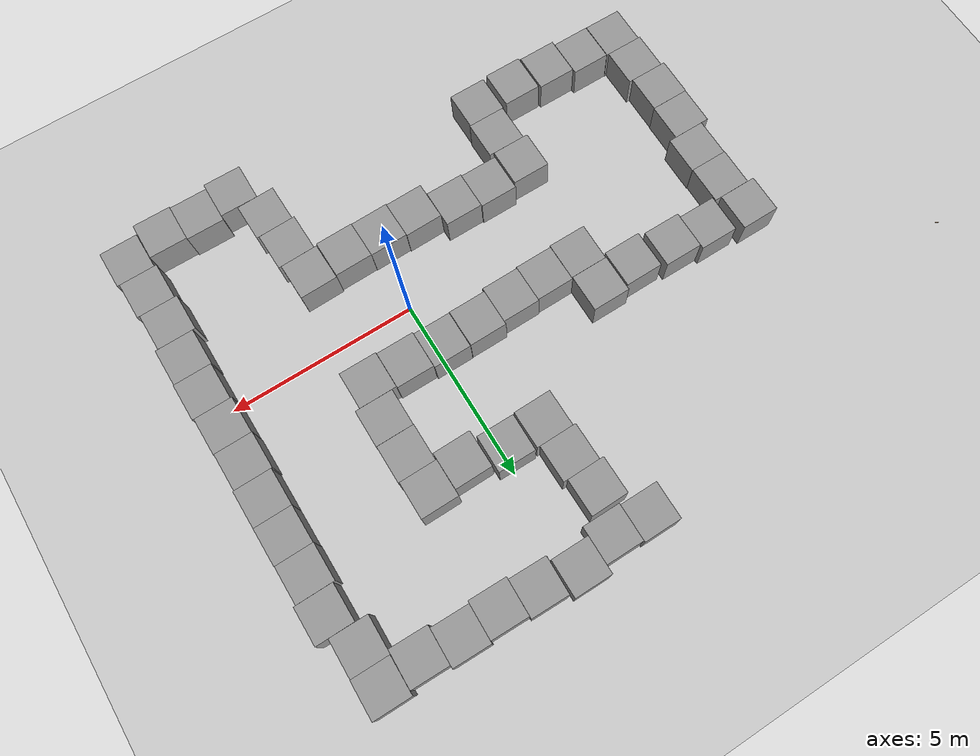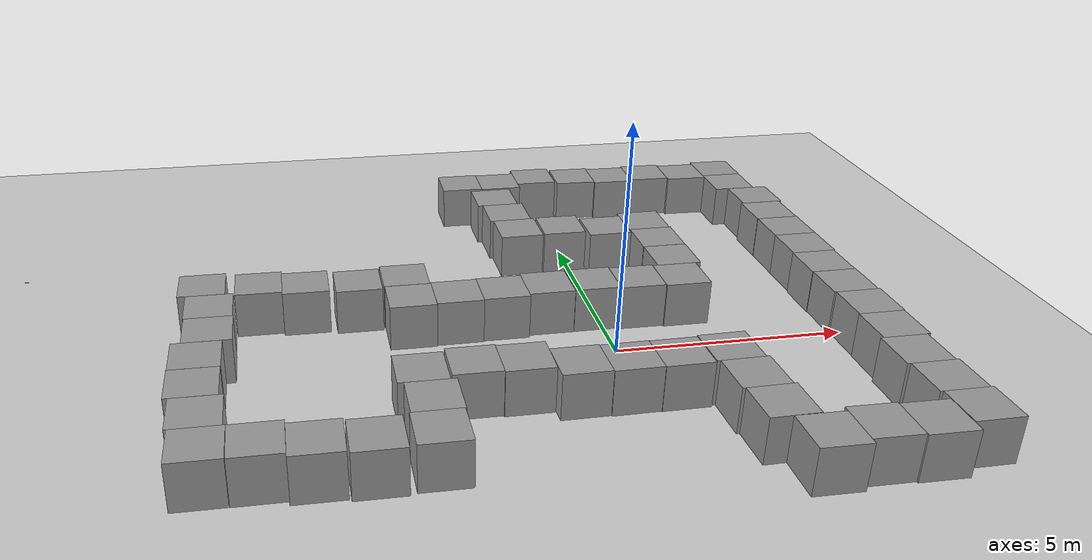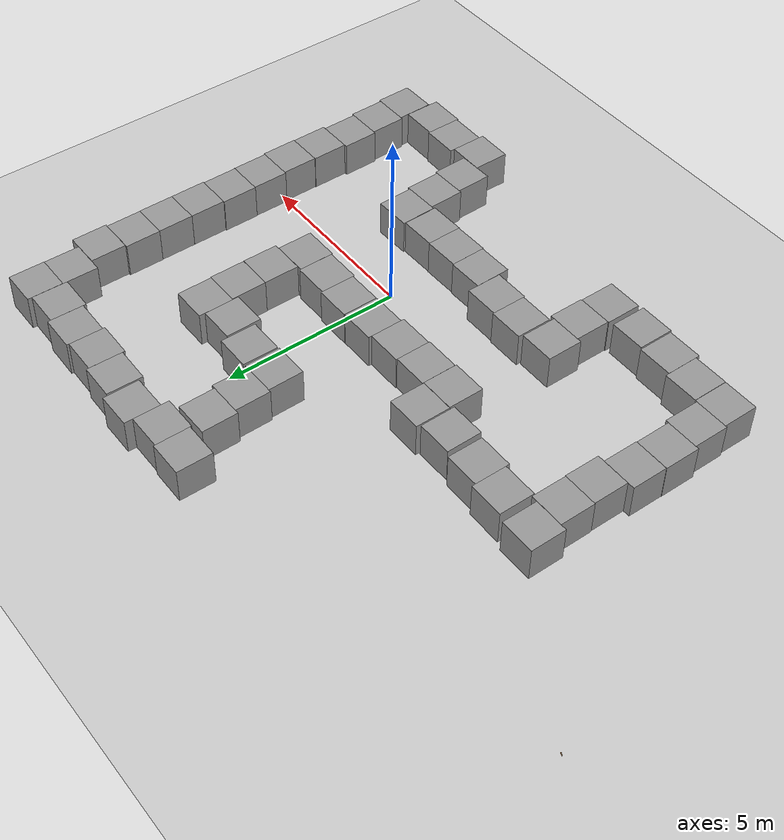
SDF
<sdf version="1.7">
 <world name="default">
  <light name="sun" type="directional">
   <pose>0 0 10 0 -0 0</pose>
   <diffuse>0.8 0.8 0.8 1</diffuse>
   <specular>0.2 0.2 0.2 1</specular>
   <attenuation>
    <range>1000</range>
    <constant>0.9</constant>
    <linear>0.01</linear>
    <quadratic>0.001</quadratic>
   </attenuation>
   <direction>-0.5 0.1 -0.9</direction>
   <spot><inner_angle>0</inner_angle><outer_angle>0</outer_angle><falloff>0</falloff></spot>
  </light>
  <model name="ground_plane">
   <static>1</static>
   <link name="link">
    <collision name="collision">
     <geometry><plane><normal>0 0 1</normal><size>100 100</size></plane></geometry>
     <surface>
      <contact><collide_bitmask>65535</collide_bitmask></contact>
      <friction><ode><mu>100</mu><mu2>50</mu2></ode></friction>
     </surface>
    </collision>
    <visual name="visual">
     <cast_shadows>0</cast_shadows>
     <geometry><plane><normal>0 0 1</normal><size>100 100</size></plane></geometry>
     <material>
      <script><uri>file://media/materials/scripts/gazebo.material</uri><name>Gazebo/Grey</name></script>
     </material>
    </visual>
   </link>
  </model>
  <gravity>0 0 -9.8</gravity>
  <magnetic_field>6e-06 2.3e-05 -4.2e-05</magnetic_field>
  <atmosphere type="adiabatic"/>
  <physics type="ode">
   <max_step_size>0.001</max_step_size>
   <real_time_factor>1</real_time_factor>
   <real_time_update_rate>1000</real_time_update_rate>
  </physics>
  <scene><ambient>0.4 0.4 0.4 1</ambient><background>0.7 0.7 0.7 1</background><shadows>1</shadows></scene>
  <spherical_coordinates>
   <surface_model>EARTH_WGS84</surface_model>
   <latitude_deg>0</latitude_deg>
   <longitude_deg>0</longitude_deg>
   <elevation>0</elevation>
   <heading_deg>0</heading_deg>
  </spherical_coordinates>
  <model name="unit_box_clone">
   <pose>-0.164448 1.46231 0.499995 -1e-05 -0 0.003311</pose>
   <link name="link">
    <inertial>
     <mass>1</mass>
     <inertia>
      <ixx>0.166667</ixx>
      <ixy>0</ixy>
      <ixz>0</ixz>
      <iyy>0.166667</iyy>
      <iyz>0</iyz>
      <izz>0.166667</izz>
     </inertia>
    </inertial>
    <collision name="collision"><geometry><box><size>1 1 1</size></box></geometry></collision>
    <visual name="visual">
     <geometry><box><size>1 1 1</size></box></geometry>
     <material>
      <script><name>Gazebo/Grey</name><uri>file://media/materials/scripts/gazebo.material</uri></script>
     </material>
    </visual>
   </link>
  </model>
  <model name="unit_box_clone_0">
   <pose>0.836914 1.41912 0.5 0 -0 0.000743</pose>
   <link name="link">
    <inertial>
     <mass>1</mass>
     <inertia>
      <ixx>0.166667</ixx>
      <ixy>0</ixy>
      <ixz>0</ixz>
      <iyy>0.166667</iyy>
      <iyz>0</iyz>
      <izz>0.166667</izz>
     </inertia>
    </inertial>
    <collision name="collision"><geometry><box><size>1 1 1</size></box></geometry></collision>
    <visual name="visual">
     <geometry><box><size>1 1 1</size></box></geometry>
     <material>
      <script><name>Gazebo/Grey</name><uri>file://media/materials/scripts/gazebo.material</uri></script>
     </material>
    </visual>
   </link>
  </model>
  <model name="unit_box_clone_1">
   <pose>1.83889 1.38351 0.499995 0 1e-05 0.000138</pose>
   <link name="link">
    <inertial>
     <mass>1</mass>
     <inertia>
      <ixx>0.166667</ixx>
      <ixy>0</ixy>
      <ixz>0</ixz>
      <iyy>0.166667</iyy>
      <iyz>0</iyz>
      <izz>0.166667</izz>
     </inertia>
    </inertial>
    <collision name="collision"><geometry><box><size>1 1 1</size></box></geometry></collision>
    <visual name="visual">
     <geometry><box><size>1 1 1</size></box></geometry>
     <material>
      <script><name>Gazebo/Grey</name><uri>file://media/materials/scripts/gazebo.material</uri></script>
     </material>
    </visual>
   </link>
  </model>
  <model name="unit_box_clone_4">
   <pose>1.70034 -1.80405 0.499995 0 -1e-05 0.024342</pose>
   <link name="link">
    <inertial>
     <mass>1</mass>
     <inertia>
      <ixx>0.166667</ixx>
      <ixy>0</ixy>
      <ixz>0</ixz>
      <iyy>0.166667</iyy>
      <iyz>0</iyz>
      <izz>0.166667</izz>
     </inertia>
    </inertial>
    <collision name="collision"><geometry><box><size>1 1 1</size></box></geometry></collision>
    <visual name="visual">
     <geometry><box><size>1 1 1</size></box></geometry>
     <material>
      <script><name>Gazebo/Grey</name><uri>file://media/materials/scripts/gazebo.material</uri></script>
     </material>
    </visual>
   </link>
  </model>
  <model name="unit_box_clone_6">
   <pose>1.923 4.38822 0.499995 -1e-05 0 0.004295</pose>
   <link name="link">
    <inertial>
     <mass>1</mass>
     <inertia>
      <ixx>0.166667</ixx>
      <ixy>0</ixy>
      <ixz>0</ixz>
      <iyy>0.166667</iyy>
      <iyz>0</iyz>
      <izz>0.166667</izz>
     </inertia>
    </inertial>
    <collision name="collision"><geometry><box><size>1 1 1</size></box></geometry></collision>
    <visual name="visual">
     <geometry><box><size>1 1 1</size></box></geometry>
     <material>
      <script><name>Gazebo/Grey</name><uri>file://media/materials/scripts/gazebo.material</uri></script>
     </material>
    </visual>
   </link>
  </model>
  <model name="unit_box_clone_7">
   <pose>1.95193 3.38825 0.499995 1e-05 -0 0.00419</pose>
   <link name="link">
    <inertial>
     <mass>1</mass>
     <inertia>
      <ixx>0.166667</ixx>
      <ixy>0</ixy>
      <ixz>0</ixz>
      <iyy>0.166667</iyy>
      <iyz>0</iyz>
      <izz>0.166667</izz>
     </inertia>
    </inertial>
    <collision name="collision"><geometry><box><size>1 1 1</size></box></geometry></collision>
    <visual name="visual">
     <geometry><box><size>1 1 1</size></box></geometry>
     <material>
      <script><name>Gazebo/Grey</name><uri>file://media/materials/scripts/gazebo.material</uri></script>
     </material>
    </visual>
   </link>
  </model>
  <model name="unit_box_clone_8">
   <pose>1.96253 2.38588 0.499995 -0 -1e-05 5.1e-05</pose>
   <link name="link">
    <inertial>
     <mass>1</mass>
     <inertia>
      <ixx>0.166667</ixx>
      <ixy>0</ixy>
      <ixz>0</ixz>
      <iyy>0.166667</iyy>
      <iyz>0</iyz>
      <izz>0.166667</izz>
     </inertia>
    </inertial>
    <collision name="collision"><geometry><box><size>1 1 1</size></box></geometry></collision>
    <visual name="visual">
     <geometry><box><size>1 1 1</size></box></geometry>
     <material>
      <script><name>Gazebo/Grey</name><uri>file://media/materials/scripts/gazebo.material</uri></script>
     </material>
    </visual>
   </link>
  </model>
  <model name="unit_box_clone_2">
   <pose>5.22257 4.52446 0.5 0 -0 0.005913</pose>
   <link name="link">
    <inertial>
     <mass>1</mass>
     <inertia>
      <ixx>0.166667</ixx>
      <ixy>0</ixy>
      <ixz>0</ixz>
      <iyy>0.166667</iyy>
      <iyz>0</iyz>
      <izz>0.166667</izz>
     </inertia>
    </inertial>
    <collision name="collision"><geometry><box><size>1 1 1</size></box></geometry></collision>
    <visual name="visual">
     <geometry><box><size>1 1 1</size></box></geometry>
     <material>
      <script><name>Gazebo/Grey</name><uri>file://media/materials/scripts/gazebo.material</uri></script>
     </material>
    </visual>
   </link>
  </model>
  <model name="unit_box_clone_9">
   <pose>5.23699 3.52421 0.5 0 -0 0.006543</pose>
   <link name="link">
    <inertial>
     <mass>1</mass>
     <inertia>
      <ixx>0.166667</ixx>
      <ixy>0</ixy>
      <ixz>0</ixz>
      <iyy>0.166667</iyy>
      <iyz>0</iyz>
      <izz>0.166667</izz>
     </inertia>
    </inertial>
    <collision name="collision"><geometry><box><size>1 1 1</size></box></geometry></collision>
    <visual name="visual">
     <geometry><box><size>1 1 1</size></box></geometry>
     <material>
      <script><name>Gazebo/Grey</name><uri>file://media/materials/scripts/gazebo.material</uri></script>
     </material>
    </visual>
   </link>
  </model>
  <model name="unit_box_clone_10">
   <pose>5.24223 2.5241 0.499995 0 -1e-05 0.006777</pose>
   <link name="link">
    <inertial>
     <mass>1</mass>
     <inertia>
      <ixx>0.166667</ixx>
      <ixy>0</ixy>
      <ixz>0</ixz>
      <iyy>0.166667</iyy>
      <iyz>0</iyz>
      <izz>0.166667</izz>
     </inertia>
    </inertial>
    <collision name="collision"><geometry><box><size>1 1 1</size></box></geometry></collision>
    <visual name="visual">
     <geometry><box><size>1 1 1</size></box></geometry>
     <material>
      <script><name>Gazebo/Grey</name><uri>file://media/materials/scripts/gazebo.material</uri></script>
     </material>
    </visual>
   </link>
  </model>
  <model name="unit_box_clone_11">
   <pose>5.22201 1.52394 0.499995 0 1e-05 0.006778</pose>
   <link name="link">
    <inertial>
     <mass>1</mass>
     <inertia>
      <ixx>0.166667</ixx>
      <ixy>0</ixy>
      <ixz>0</ixz>
      <iyy>0.166667</iyy>
      <iyz>0</iyz>
      <izz>0.166667</izz>
     </inertia>
    </inertial>
    <collision name="collision"><geometry><box><size>1 1 1</size></box></geometry></collision>
    <visual name="visual">
     <geometry><box><size>1 1 1</size></box></geometry>
     <material>
      <script><name>Gazebo/Grey</name><uri>file://media/materials/scripts/gazebo.material</uri></script>
     </material>
    </visual>
   </link>
  </model>
  <model name="unit_box_clone_12">
   <pose>5.24227 0.523939 0.5 0 -0 0.007004</pose>
   <link name="link">
    <inertial>
     <mass>1</mass>
     <inertia>
      <ixx>0.166667</ixx>
      <ixy>0</ixy>
      <ixz>0</ixz>
      <iyy>0.166667</iyy>
      <iyz>0</iyz>
      <izz>0.166667</izz>
     </inertia>
    </inertial>
    <collision name="collision"><geometry><box><size>1 1 1</size></box></geometry></collision>
    <visual name="visual">
     <geometry><box><size>1 1 1</size></box></geometry>
     <material>
      <script><name>Gazebo/Grey</name><uri>file://media/materials/scripts/gazebo.material</uri></script>
     </material>
    </visual>
   </link>
  </model>
  <model name="unit_box_clone_13">
   <pose>5.28859 -0.475823 0.5 0 -0 0.007122</pose>
   <link name="link">
    <inertial>
     <mass>1</mass>
     <inertia>
      <ixx>0.166667</ixx>
      <ixy>0</ixy>
      <ixz>0</ixz>
      <iyy>0.166667</iyy>
      <iyz>0</iyz>
      <izz>0.166667</izz>
     </inertia>
    </inertial>
    <collision name="collision"><geometry><box><size>1 1 1</size></box></geometry></collision>
    <visual name="visual">
     <geometry><box><size>1 1 1</size></box></geometry>
     <material>
      <script><name>Gazebo/Grey</name><uri>file://media/materials/scripts/gazebo.material</uri></script>
     </material>
    </visual>
   </link>
  </model>
  <model name="unit_box_clone_3">
   <pose>5.27998 -1.47594 0.499995 -9e-06 -0 0.007189</pose>
   <link name="link">
    <inertial>
     <mass>1</mass>
     <inertia>
      <ixx>0.166667</ixx>
      <ixy>0</ixy>
      <ixz>0</ixz>
      <iyy>0.166667</iyy>
      <iyz>0</iyz>
      <izz>0.166667</izz>
     </inertia>
    </inertial>
    <collision name="collision"><geometry><box><size>1 1 1</size></box></geometry></collision>
    <visual name="visual">
     <geometry><box><size>1 1 1</size></box></geometry>
     <material>
      <script><name>Gazebo/Grey</name><uri>file://media/materials/scripts/gazebo.material</uri></script>
     </material>
    </visual>
   </link>
  </model>
  <model name="unit_box_clone_14">
   <pose>5.21376 -2.47652 0.499995 1e-05 -0 0.007311</pose>
   <link name="link">
    <inertial>
     <mass>1</mass>
     <inertia>
      <ixx>0.166667</ixx>
      <ixy>0</ixy>
      <ixz>0</ixz>
      <iyy>0.166667</iyy>
      <iyz>0</iyz>
      <izz>0.166667</izz>
     </inertia>
    </inertial>
    <collision name="collision"><geometry><box><size>1 1 1</size></box></geometry></collision>
    <visual name="visual">
     <geometry><box><size>1 1 1</size></box></geometry>
     <material>
      <script><name>Gazebo/Grey</name><uri>file://media/materials/scripts/gazebo.material</uri></script>
     </material>
    </visual>
   </link>
  </model>
  <model name="unit_box_clone_15">
   <pose>5.28351 -3.47604 0.499995 -9e-06 -0 0.007329</pose>
   <link name="link">
    <inertial>
     <mass>1</mass>
     <inertia>
      <ixx>0.166667</ixx>
      <ixy>0</ixy>
      <ixz>0</ixz>
      <iyy>0.166667</iyy>
      <iyz>0</iyz>
      <izz>0.166667</izz>
     </inertia>
    </inertial>
    <collision name="collision"><geometry><box><size>1 1 1</size></box></geometry></collision>
    <visual name="visual">
     <geometry><box><size>1 1 1</size></box></geometry>
     <material>
      <script><name>Gazebo/Grey</name><uri>file://media/materials/scripts/gazebo.material</uri></script>
     </material>
    </visual>
   </link>
  </model>
  <model name="unit_box_clone_17">
   <pose>1.79247 -2.80224 0.499995 0 -1e-05 0.024104</pose>
   <link name="link">
    <inertial>
     <mass>1</mass>
     <inertia>
      <ixx>0.166667</ixx>
      <ixy>0</ixy>
      <ixz>0</ixz>
      <iyy>0.166667</iyy>
      <iyz>0</iyz>
      <izz>0.166667</izz>
     </inertia>
    </inertial>
    <collision name="collision"><geometry><box><size>1 1 1</size></box></geometry></collision>
    <visual name="visual">
     <geometry><box><size>1 1 1</size></box></geometry>
     <material>
      <script><name>Gazebo/Grey</name><uri>file://media/materials/scripts/gazebo.material</uri></script>
     </material>
    </visual>
   </link>
  </model>
  <model name="unit_box_clone_18">
   <pose>1.87859 -3.80047 0.499995 0 -1e-05 0.024072</pose>
   <link name="link">
    <inertial>
     <mass>1</mass>
     <inertia>
      <ixx>0.166667</ixx>
      <ixy>0</ixy>
      <ixz>0</ixz>
      <iyy>0.166667</iyy>
      <iyz>0</iyz>
      <izz>0.166667</izz>
     </inertia>
    </inertial>
    <collision name="collision"><geometry><box><size>1 1 1</size></box></geometry></collision>
    <visual name="visual">
     <geometry><box><size>1 1 1</size></box></geometry>
     <material>
      <script><name>Gazebo/Grey</name><uri>file://media/materials/scripts/gazebo.material</uri></script>
     </material>
    </visual>
   </link>
  </model>
  <model name="unit_box_clone_19">
   <pose>3.33754 -4.68844 0.499995 1e-05 -0 -0.006964</pose>
   <link name="link">
    <inertial>
     <mass>1</mass>
     <inertia>
      <ixx>0.166667</ixx>
      <ixy>0</ixy>
      <ixz>0</ixz>
      <iyy>0.166667</iyy>
      <iyz>0</iyz>
      <izz>0.166667</izz>
     </inertia>
    </inertial>
    <collision name="collision"><geometry><box><size>1 1 1</size></box></geometry></collision>
    <visual name="visual">
     <geometry><box><size>1 1 1</size></box></geometry>
     <material>
      <script><name>Gazebo/Grey</name><uri>file://media/materials/scripts/gazebo.material</uri></script>
     </material>
    </visual>
   </link>
  </model>
  <model name="unit_box_clone_20">
   <pose>4.33732 -4.73069 0.499995 -1e-05 0 -0.006905</pose>
   <link name="link">
    <inertial>
     <mass>1</mass>
     <inertia>
      <ixx>0.166667</ixx>
      <ixy>0</ixy>
      <ixz>0</ixz>
      <iyy>0.166667</iyy>
      <iyz>0</iyz>
      <izz>0.166667</izz>
     </inertia>
    </inertial>
    <collision name="collision"><geometry><box><size>1 1 1</size></box></geometry></collision>
    <visual name="visual">
     <geometry><box><size>1 1 1</size></box></geometry>
     <material>
      <script><name>Gazebo/Grey</name><uri>file://media/materials/scripts/gazebo.material</uri></script>
     </material>
    </visual>
   </link>
  </model>
  <model name="unit_box_clone_21">
   <pose>0.686791 -1.86676 0.499995 0 -1e-05 0.016802</pose>
   <link name="link">
    <inertial>
     <mass>1</mass>
     <inertia>
      <ixx>0.166667</ixx>
      <ixy>0</ixy>
      <ixz>0</ixz>
      <iyy>0.166667</iyy>
      <iyz>0</iyz>
      <izz>0.166667</izz>
     </inertia>
    </inertial>
    <collision name="collision"><geometry><box><size>1 1 1</size></box></geometry></collision>
    <visual name="visual">
     <geometry><box><size>1 1 1</size></box></geometry>
     <material>
      <script><name>Gazebo/Grey</name><uri>file://media/materials/scripts/gazebo.material</uri></script>
     </material>
    </visual>
   </link>
  </model>
  <model name="unit_box_clone_22">
   <pose>-0.31336 -1.86992 0.499995 0 1e-05 0.016914</pose>
   <link name="link">
    <inertial>
     <mass>1</mass>
     <inertia>
      <ixx>0.166667</ixx>
      <ixy>0</ixy>
      <ixz>0</ixz>
      <iyy>0.166667</iyy>
      <iyz>0</iyz>
      <izz>0.166667</izz>
     </inertia>
    </inertial>
    <collision name="collision"><geometry><box><size>1 1 1</size></box></geometry></collision>
    <visual name="visual">
     <geometry><box><size>1 1 1</size></box></geometry>
     <material>
      <script><name>Gazebo/Grey</name><uri>file://media/materials/scripts/gazebo.material</uri></script>
     </material>
    </visual>
   </link>
  </model>
  <model name="unit_box_clone_23">
   <pose>-1.31367 -1.86213 0.499995 0 1e-05 0.016973</pose>
   <link name="link">
    <inertial>
     <mass>1</mass>
     <inertia>
      <ixx>0.166667</ixx>
      <ixy>0</ixy>
      <ixz>0</ixz>
      <iyy>0.166667</iyy>
      <iyz>0</iyz>
      <izz>0.166667</izz>
     </inertia>
    </inertial>
    <collision name="collision"><geometry><box><size>1 1 1</size></box></geometry></collision>
    <visual name="visual">
     <geometry><box><size>1 1 1</size></box></geometry>
     <material>
      <script><name>Gazebo/Grey</name><uri>file://media/materials/scripts/gazebo.material</uri></script>
     </material>
    </visual>
   </link>
  </model>
  <model name="unit_box_clone_24">
   <pose>-2.32285 -1.57254 0.499995 0 -1e-05 0.001689</pose>
   <link name="link">
    <inertial>
     <mass>1</mass>
     <inertia>
      <ixx>0.166667</ixx>
      <ixy>0</ixy>
      <ixz>0</ixz>
      <iyy>0.166667</iyy>
      <iyz>0</iyz>
      <izz>0.166667</izz>
     </inertia>
    </inertial>
    <collision name="collision"><geometry><box><size>1 1 1</size></box></geometry></collision>
    <visual name="visual">
     <geometry><box><size>1 1 1</size></box></geometry>
     <material>
      <script><name>Gazebo/Grey</name><uri>file://media/materials/scripts/gazebo.material</uri></script>
     </material>
    </visual>
   </link>
  </model>
  <model name="unit_box_clone_29">
   <pose>-2.17385 1.3594 0.5 0 -0 0.006423</pose>
   <link name="link">
    <inertial>
     <mass>1</mass>
     <inertia>
      <ixx>0.166667</ixx>
      <ixy>0</ixy>
      <ixz>0</ixz>
      <iyy>0.166667</iyy>
      <iyz>0</iyz>
      <izz>0.166667</izz>
     </inertia>
    </inertial>
    <collision name="collision"><geometry><box><size>1 1 1</size></box></geometry></collision>
    <visual name="visual">
     <geometry><box><size>1 1 1</size></box></geometry>
     <material>
      <script><name>Gazebo/Grey</name><uri>file://media/materials/scripts/gazebo.material</uri></script>
     </material>
    </visual>
   </link>
  </model>
  <model name="unit_box_clone_33">
   <pose>5.27661 5.52628 0.499995 1e-05 -0 0.003347</pose>
   <link name="link">
    <inertial>
     <mass>1</mass>
     <inertia>
      <ixx>0.166667</ixx>
      <ixy>0</ixy>
      <ixz>0</ixz>
      <iyy>0.166667</iyy>
      <iyz>0</iyz>
      <izz>0.166667</izz>
     </inertia>
    </inertial>
    <collision name="collision"><geometry><box><size>1 1 1</size></box></geometry></collision>
    <visual name="visual">
     <geometry><box><size>1 1 1</size></box></geometry>
     <material>
      <script><name>Gazebo/Grey</name><uri>file://media/materials/scripts/gazebo.material</uri></script>
     </material>
    </visual>
   </link>
  </model>
  <model name="unit_box_clone_30_clone_0">
   <pose>0.922238 4.2171 0.499995 -1e-05 0 0.008732</pose>
   <link name="link">
    <inertial>
     <mass>1</mass>
     <inertia>
      <ixx>0.166667</ixx>
      <ixy>0</ixy>
      <ixz>0</ixz>
      <iyy>0.166667</iyy>
      <iyz>0</iyz>
      <izz>0.166667</izz>
     </inertia>
    </inertial>
    <collision name="collision"><geometry><box><size>1 1 1</size></box></geometry></collision>
    <visual name="visual">
     <geometry><box><size>1 1 1</size></box></geometry>
     <material>
      <script><name>Gazebo/Grey</name><uri>file://media/materials/scripts/gazebo.material</uri></script>
     </material>
    </visual>
   </link>
  </model>
  <model name="unit_box_clone_33_clone">
   <pose>4.95423 6.53093 0.5 -0 -0 -0.008101</pose>
   <link name="link">
    <inertial>
     <mass>1</mass>
     <inertia>
      <ixx>0.166667</ixx>
      <ixy>0</ixy>
      <ixz>0</ixz>
      <iyy>0.166667</iyy>
      <iyz>0</iyz>
      <izz>0.166667</izz>
     </inertia>
    </inertial>
    <collision name="collision"><geometry><box><size>1 1 1</size></box></geometry></collision>
    <visual name="visual">
     <geometry><box><size>1 1 1</size></box></geometry>
     <material>
      <script><name>Gazebo/Grey</name><uri>file://media/materials/scripts/gazebo.material</uri></script>
     </material>
    </visual>
   </link>
  </model>
  <model name="unit_box_clone_18_clone">
   <pose>2.33664 -4.80546 0.499995 1e-05 -0 -0.007083</pose>
   <link name="link">
    <inertial>
     <mass>1</mass>
     <inertia>
      <ixx>0.166667</ixx>
      <ixy>0</ixy>
      <ixz>0</ixz>
      <iyy>0.166667</iyy>
      <iyz>0</iyz>
      <izz>0.166667</izz>
     </inertia>
    </inertial>
    <collision name="collision"><geometry><box><size>1 1 1</size></box></geometry></collision>
    <visual name="visual">
     <geometry><box><size>1 1 1</size></box></geometry>
     <material>
      <script><name>Gazebo/Grey</name><uri>file://media/materials/scripts/gazebo.material</uri></script>
     </material>
    </visual>
   </link>
  </model>
  <model name="unit_box_clone_15_clone">
   <pose>5.35008 -4.4756 0.499995 1e-05 -0 0.007352</pose>
   <link name="link">
    <inertial>
     <mass>1</mass>
     <inertia>
      <ixx>0.166667</ixx>
      <ixy>0</ixy>
      <ixz>0</ixz>
      <iyy>0.166667</iyy>
      <iyz>0</iyz>
      <izz>0.166667</izz>
     </inertia>
    </inertial>
    <collision name="collision"><geometry><box><size>1 1 1</size></box></geometry></collision>
    <visual name="visual">
     <geometry><box><size>1 1 1</size></box></geometry>
     <material>
      <script><name>Gazebo/Grey</name><uri>file://media/materials/scripts/gazebo.material</uri></script>
     </material>
    </visual>
   </link>
  </model>
  <model name="unit_box">
   <pose>-1.17439 1.44806 0.499995 -1e-05 -0 0.006424</pose>
   <link name="link">
    <inertial>
     <mass>1</mass>
     <inertia>
      <ixx>0.166667</ixx>
      <ixy>0</ixy>
      <ixz>0</ixz>
      <iyy>0.166667</iyy>
      <iyz>0</iyz>
      <izz>0.166667</izz>
     </inertia>
    </inertial>
    <collision name="collision"><geometry><box><size>1 1 1</size></box></geometry></collision>
    <visual name="visual">
     <geometry><box><size>1 1 1</size></box></geometry>
     <material>
      <script><name>Gazebo/Grey</name><uri>file://media/materials/scripts/gazebo.material</uri></script>
     </material>
    </visual>
   </link>
  </model>
  <model name="unit_box_clone_5">
   <pose>4.97164 7.531 0.499995 1e-05 -0 -0.008451</pose>
   <link name="link">
    <inertial>
     <mass>1</mass>
     <inertia>
      <ixx>0.166667</ixx>
      <ixy>0</ixy>
      <ixz>0</ixz>
      <iyy>0.166667</iyy>
      <iyz>0</iyz>
      <izz>0.166667</izz>
     </inertia>
    </inertial>
    <collision name="collision"><geometry><box><size>1 1 1</size></box></geometry></collision>
    <visual name="visual">
     <geometry><box><size>1 1 1</size></box></geometry>
     <material>
      <script><name>Gazebo/Grey</name><uri>file://media/materials/scripts/gazebo.material</uri></script>
     </material>
    </visual>
   </link>
  </model>
  <model name="unit_box_clone_16">
   <pose>3.96539 7.42324 0.5 0 0 -0.018487</pose>
   <link name="link">
    <inertial>
     <mass>1</mass>
     <inertia>
      <ixx>0.166667</ixx>
      <ixy>0</ixy>
      <ixz>0</ixz>
      <iyy>0.166667</iyy>
      <iyz>0</iyz>
      <izz>0.166667</izz>
     </inertia>
    </inertial>
    <collision name="collision"><geometry><box><size>1 1 1</size></box></geometry></collision>
    <visual name="visual">
     <geometry><box><size>1 1 1</size></box></geometry>
     <material>
      <script><name>Gazebo/Grey</name><uri>file://media/materials/scripts/gazebo.material</uri></script>
     </material>
    </visual>
   </link>
  </model>
  <model name="unit_box_clone_30">
   <pose>2.96649 7.52749 0.499995 1e-05 0 -0.017611</pose>
   <link name="link">
    <inertial>
     <mass>1</mass>
     <inertia>
      <ixx>0.166667</ixx>
      <ixy>0</ixy>
      <ixz>0</ixz>
      <iyy>0.166667</iyy>
      <iyz>0</iyz>
      <izz>0.166667</izz>
     </inertia>
    </inertial>
    <collision name="collision"><geometry><box><size>1 1 1</size></box></geometry></collision>
    <visual name="visual">
     <geometry><box><size>1 1 1</size></box></geometry>
     <material>
      <script><name>Gazebo/Grey</name><uri>file://media/materials/scripts/gazebo.material</uri></script>
     </material>
    </visual>
   </link>
  </model>
  <model name="unit_box_clone_31">
   <pose>0.966476 7.56669 0.499995 -1e-05 0 -0.01713</pose>
   <link name="link">
    <inertial>
     <mass>1</mass>
     <inertia>
      <ixx>0.166667</ixx>
      <ixy>0</ixy>
      <ixz>0</ixz>
      <iyy>0.166667</iyy>
      <iyz>0</iyz>
      <izz>0.166667</izz>
     </inertia>
    </inertial>
    <collision name="collision"><geometry><box><size>1 1 1</size></box></geometry></collision>
    <visual name="visual">
     <geometry><box><size>1 1 1</size></box></geometry>
     <material>
      <script><name>Gazebo/Grey</name><uri>file://media/materials/scripts/gazebo.material</uri></script>
     </material>
    </visual>
   </link>
  </model>
  <model name="unit_box_clone_32">
   <pose>-0.077473 7.71365 0.5 0 -0 -0.001362</pose>
   <link name="link">
    <inertial>
     <mass>1</mass>
     <inertia>
      <ixx>0.166667</ixx>
      <ixy>0</ixy>
      <ixz>0</ixz>
      <iyy>0.166667</iyy>
      <iyz>0</iyz>
      <izz>0.166667</izz>
     </inertia>
    </inertial>
    <collision name="collision"><geometry><box><size>1 1 1</size></box></geometry></collision>
    <visual name="visual">
     <geometry><box><size>1 1 1</size></box></geometry>
     <material>
      <script><name>Gazebo/Grey</name><uri>file://media/materials/scripts/gazebo.material</uri></script>
     </material>
    </visual>
   </link>
  </model>
  <model name="unit_box_clone_34">
   <pose>1.96534 7.48115 0.499995 0 -1e-05 -0.017355</pose>
   <link name="link">
    <inertial>
     <mass>1</mass>
     <inertia>
      <ixx>0.166667</ixx>
      <ixy>0</ixy>
      <ixz>0</ixz>
      <iyy>0.166667</iyy>
      <iyz>0</iyz>
      <izz>0.166667</izz>
     </inertia>
    </inertial>
    <collision name="collision"><geometry><box><size>1 1 1</size></box></geometry></collision>
    <visual name="visual">
     <geometry><box><size>1 1 1</size></box></geometry>
     <material>
      <script><name>Gazebo/Grey</name><uri>file://media/materials/scripts/gazebo.material</uri></script>
     </material>
    </visual>
   </link>
  </model>
  <model name="unit_box_clone_35">
   <pose>-0.132625 4.42696 0.499995 -1e-05 -0 -0.005022</pose>
   <link name="link">
    <inertial>
     <mass>1</mass>
     <inertia>
      <ixx>0.166667</ixx>
      <ixy>0</ixy>
      <ixz>0</ixz>
      <iyy>0.166667</iyy>
      <iyz>0</iyz>
      <izz>0.166667</izz>
     </inertia>
    </inertial>
    <collision name="collision"><geometry><box><size>1 1 1</size></box></geometry></collision>
    <visual name="visual">
     <geometry><box><size>1 1 1</size></box></geometry>
     <material>
      <script><name>Gazebo/Grey</name><uri>file://media/materials/scripts/gazebo.material</uri></script>
     </material>
    </visual>
   </link>
  </model>
  <model name="unit_box_clone_36">
   <pose>-1.17874 4.40164 0.499995 -0 1e-05 0.01078</pose>
   <link name="link">
    <inertial>
     <mass>1</mass>
     <inertia>
      <ixx>0.166667</ixx>
      <ixy>0</ixy>
      <ixz>0</ixz>
      <iyy>0.166667</iyy>
      <iyz>0</iyz>
      <izz>0.166667</izz>
     </inertia>
    </inertial>
    <collision name="collision"><geometry><box><size>1 1 1</size></box></geometry></collision>
    <visual name="visual">
     <geometry><box><size>1 1 1</size></box></geometry>
     <material>
      <script><name>Gazebo/Grey</name><uri>file://media/materials/scripts/gazebo.material</uri></script>
     </material>
    </visual>
   </link>
  </model>
  <model name="unit_box_clone_37">
   <pose>-1.26167 5.4008 0.499995 -0 1e-05 0.01078</pose>
   <link name="link">
    <inertial>
     <mass>1</mass>
     <inertia>
      <ixx>0.166667</ixx>
      <ixy>0</ixy>
      <ixz>0</ixz>
      <iyy>0.166667</iyy>
      <iyz>0</iyz>
      <izz>0.166667</izz>
     </inertia>
    </inertial>
    <collision name="collision"><geometry><box><size>1 1 1</size></box></geometry></collision>
    <visual name="visual">
     <geometry><box><size>1 1 1</size></box></geometry>
     <material>
      <script><name>Gazebo/Grey</name><uri>file://media/materials/scripts/gazebo.material</uri></script>
     </material>
    </visual>
   </link>
  </model>
  <model name="unit_box_clone_38">
   <pose>-1.3794 6.39968 0.499995 -1e-05 -0 0.010935</pose>
   <link name="link">
    <inertial>
     <mass>1</mass>
     <inertia>
      <ixx>0.166667</ixx>
      <ixy>0</ixy>
      <ixz>0</ixz>
      <iyy>0.166667</iyy>
      <iyz>0</iyz>
      <izz>0.166667</izz>
     </inertia>
    </inertial>
    <collision name="collision"><geometry><box><size>1 1 1</size></box></geometry></collision>
    <visual name="visual">
     <geometry><box><size>1 1 1</size></box></geometry>
     <material>
      <script><name>Gazebo/Grey</name><uri>file://media/materials/scripts/gazebo.material</uri></script>
     </material>
    </visual>
   </link>
  </model>
  <model name="unit_box_clone_39">
   <pose>-1.07785 7.48261 0.499995 1e-05 -0 -0.001407</pose>
   <link name="link">
    <inertial>
     <mass>1</mass>
     <inertia>
      <ixx>0.166667</ixx>
      <ixy>0</ixy>
      <ixz>0</ixz>
      <iyy>0.166667</iyy>
      <iyz>0</iyz>
      <izz>0.166667</izz>
     </inertia>
    </inertial>
    <collision name="collision"><geometry><box><size>1 1 1</size></box></geometry></collision>
    <visual name="visual">
     <geometry><box><size>1 1 1</size></box></geometry>
     <material>
      <script><name>Gazebo/Grey</name><uri>file://media/materials/scripts/gazebo.material</uri></script>
     </material>
    </visual>
   </link>
  </model>
  <model name="unit_box_clone_40">
   <pose>-2.07782 7.52618 0.499995 -1e-05 -0 -0.00144</pose>
   <link name="link">
    <inertial>
     <mass>1</mass>
     <inertia>
      <ixx>0.166667</ixx>
      <ixy>0</ixy>
      <ixz>0</ixz>
      <iyy>0.166667</iyy>
      <iyz>0</iyz>
      <izz>0.166667</izz>
     </inertia>
    </inertial>
    <collision name="collision"><geometry><box><size>1 1 1</size></box></geometry></collision>
    <visual name="visual">
     <geometry><box><size>1 1 1</size></box></geometry>
     <material>
      <script><name>Gazebo/Grey</name><uri>file://media/materials/scripts/gazebo.material</uri></script>
     </material>
    </visual>
   </link>
  </model>
  <model name="wooden_peg">
   <link name="link">
    <pose>0 0 0.04 0 -0 0</pose>
    <inertial>
     <mass>0.0175</mass>
     <inertia>
      <ixx>9.74923e-06</ixx>
      <ixy>0</ixy>
      <ixz>0</ixz>
      <iyy>9.74923e-06</iyy>
      <iyz>0</iyz>
      <izz>8.31797e-07</izz>
     </inertia>
    </inertial>
    <collision name="collision">
     <geometry><cylinder><radius>0.00975</radius><length>0.08</length></cylinder></geometry>
     <surface>
      <contact>
       <poissons_ratio>0.347</poissons_ratio>
       <elastic_modulus>8.8e+09</elastic_modulus>
       <ode><kp>100000</kp><kd>100</kd><max_vel>100</max_vel><min_depth>0.001</min_depth></ode>
      </contact>
      <friction>
       <torsional>
        <coefficient>1</coefficient>
        <use_patch_radius>0</use_patch_radius>
        <surface_radius>0.01</surface_radius>
       </torsional>
      </friction>
     </surface>
    </collision>
    <visual name="visual">
     <geometry><cylinder><radius>0.00975</radius><length>0.08</length></cylinder></geometry>
     <material>
      <script><uri>file://media/materials/scripts/gazebo.material</uri><name>Gazebo/Wood</name></script>
     </material>
    </visual>
   </link>
   <pose>-12.7812 5.26987 0.008749 1.5708 1.32977 -1.95871</pose>
  </model>
  <model name="unit_box_0_clone">
   <pose>-4.3626 -1.64811 0.499995 0 -1e-05 0.000193</pose>
   <link name="link">
    <inertial>
     <mass>1</mass>
     <inertia>
      <ixx>0.166667</ixx>
      <ixy>0</ixy>
      <ixz>0</ixz>
      <iyy>0.166667</iyy>
      <iyz>0</iyz>
      <izz>0.166667</izz>
     </inertia>
    </inertial>
    <collision name="collision"><geometry><box><size>1 1 1</size></box></geometry></collision>
    <visual name="visual">
     <geometry><box><size>1 1 1</size></box></geometry>
     <material>
      <script><name>Gazebo/Grey</name><uri>file://media/materials/scripts/gazebo.material</uri></script>
     </material>
    </visual>
   </link>
  </model>
  <model name="unit_box_0_clone_0">
   <pose>-4.24314 -2.64864 0.499995 -1e-05 -0 6.2e-05</pose>
   <link name="link">
    <inertial>
     <mass>1</mass>
     <inertia>
      <ixx>0.166667</ixx>
      <ixy>0</ixy>
      <ixz>0</ixz>
      <iyy>0.166667</iyy>
      <iyz>0</iyz>
      <izz>0.166667</izz>
     </inertia>
    </inertial>
    <collision name="collision"><geometry><box><size>1 1 1</size></box></geometry></collision>
    <visual name="visual">
     <geometry><box><size>1 1 1</size></box></geometry>
     <material>
      <script><name>Gazebo/Grey</name><uri>file://media/materials/scripts/gazebo.material</uri></script>
     </material>
    </visual>
   </link>
  </model>
  <model name="unit_box_0_clone_1">
   <pose>-4.26465 -3.64876 0.499995 1e-05 -0 -0.000161</pose>
   <link name="link">
    <inertial>
     <mass>1</mass>
     <inertia>
      <ixx>0.166667</ixx>
      <ixy>0</ixy>
      <ixz>0</ixz>
      <iyy>0.166667</iyy>
      <iyz>0</iyz>
      <izz>0.166667</izz>
     </inertia>
    </inertial>
    <collision name="collision"><geometry><box><size>1 1 1</size></box></geometry></collision>
    <visual name="visual">
     <geometry><box><size>1 1 1</size></box></geometry>
     <material>
      <script><name>Gazebo/Grey</name><uri>file://media/materials/scripts/gazebo.material</uri></script>
     </material>
    </visual>
   </link>
  </model>
  <model name="unit_box_0_clone_2">
   <pose>-5.38649 -3.69388 0.499995 1e-05 -0 0</pose>
   <link name="link">
    <inertial>
     <mass>1</mass>
     <inertia>
      <ixx>0.166667</ixx>
      <ixy>0</ixy>
      <ixz>0</ixz>
      <iyy>0.166667</iyy>
      <iyz>0</iyz>
      <izz>0.166667</izz>
     </inertia>
    </inertial>
    <collision name="collision"><geometry><box><size>1 1 1</size></box></geometry></collision>
    <visual name="visual">
     <geometry><box><size>1 1 1</size></box></geometry>
     <material>
      <script><name>Gazebo/Grey</name><uri>file://media/materials/scripts/gazebo.material</uri></script>
     </material>
    </visual>
   </link>
  </model>
  <model name="unit_box_0_clone_3">
   <pose>-6.42361 -3.63876 0.499995 0 1e-05 0.000533</pose>
   <link name="link">
    <inertial>
     <mass>1</mass>
     <inertia>
      <ixx>0.166667</ixx>
      <ixy>0</ixy>
      <ixz>0</ixz>
      <iyy>0.166667</iyy>
      <iyz>0</iyz>
      <izz>0.166667</izz>
     </inertia>
    </inertial>
    <collision name="collision"><geometry><box><size>1 1 1</size></box></geometry></collision>
    <visual name="visual">
     <geometry><box><size>1 1 1</size></box></geometry>
     <material>
      <script><name>Gazebo/Grey</name><uri>file://media/materials/scripts/gazebo.material</uri></script>
     </material>
    </visual>
   </link>
  </model>
  <model name="unit_box_0_clone_4">
   <pose>-7.42547 -3.53033 0.499995 0 -1e-05 0.002284</pose>
   <link name="link">
    <inertial>
     <mass>1</mass>
     <inertia>
      <ixx>0.166667</ixx>
      <ixy>0</ixy>
      <ixz>0</ixz>
      <iyy>0.166667</iyy>
      <iyz>0</iyz>
      <izz>0.166667</izz>
     </inertia>
    </inertial>
    <collision name="collision"><geometry><box><size>1 1 1</size></box></geometry></collision>
    <visual name="visual">
     <geometry><box><size>1 1 1</size></box></geometry>
     <material>
      <script><name>Gazebo/Grey</name><uri>file://media/materials/scripts/gazebo.material</uri></script>
     </material>
    </visual>
   </link>
  </model>
  <model name="unit_box_0_clone_5">
   <pose>-3.1737 1.32705 0.499995 -1e-05 -0 0.00633</pose>
   <link name="link">
    <inertial>
     <mass>1</mass>
     <inertia>
      <ixx>0.166667</ixx>
      <ixy>0</ixy>
      <ixz>0</ixz>
      <iyy>0.166667</iyy>
      <iyz>0</iyz>
      <izz>0.166667</izz>
     </inertia>
    </inertial>
    <collision name="collision"><geometry><box><size>1 1 1</size></box></geometry></collision>
    <visual name="visual">
     <geometry><box><size>1 1 1</size></box></geometry>
     <material>
      <script><name>Gazebo/Grey</name><uri>file://media/materials/scripts/gazebo.material</uri></script>
     </material>
    </visual>
   </link>
  </model>
  <model name="unit_box_0_clone_6">
   <pose>-4.17579 1.2882 0.499995 1e-05 -0 0.001701</pose>
   <link name="link">
    <inertial>
     <mass>1</mass>
     <inertia>
      <ixx>0.166667</ixx>
      <ixy>0</ixy>
      <ixz>0</ixz>
      <iyy>0.166667</iyy>
      <iyz>0</iyz>
      <izz>0.166667</izz>
     </inertia>
    </inertial>
    <collision name="collision"><geometry><box><size>1 1 1</size></box></geometry></collision>
    <visual name="visual">
     <geometry><box><size>1 1 1</size></box></geometry>
     <material>
      <script><name>Gazebo/Grey</name><uri>file://media/materials/scripts/gazebo.material</uri></script>
     </material>
    </visual>
   </link>
  </model>
  <model name="unit_box_0_clone_clone">
   <pose>-3.32293 -1.53757 0.5 0 -0 0.001688</pose>
   <link name="link">
    <inertial>
     <mass>1</mass>
     <inertia>
      <ixx>0.166667</ixx>
      <ixy>0</ixy>
      <ixz>0</ixz>
      <iyy>0.166667</iyy>
      <iyz>0</iyz>
      <izz>0.166667</izz>
     </inertia>
    </inertial>
    <collision name="collision"><geometry><box><size>1 1 1</size></box></geometry></collision>
    <visual name="visual">
     <geometry><box><size>1 1 1</size></box></geometry>
     <material>
      <script><name>Gazebo/Grey</name><uri>file://media/materials/scripts/gazebo.material</uri></script>
     </material>
    </visual>
   </link>
  </model>
  <model name="unit_box_0_clone_clone_0">
   <pose>-4.19149 2.29062 0.499995 0 -1e-05 0.000943</pose>
   <link name="link">
    <inertial>
     <mass>1</mass>
     <inertia>
      <ixx>0.166667</ixx>
      <ixy>0</ixy>
      <ixz>0</ixz>
      <iyy>0.166667</iyy>
      <iyz>0</iyz>
      <izz>0.166667</izz>
     </inertia>
    </inertial>
    <collision name="collision"><geometry><box><size>1 1 1</size></box></geometry></collision>
    <visual name="visual">
     <geometry><box><size>1 1 1</size></box></geometry>
     <material>
      <script><name>Gazebo/Grey</name><uri>file://media/materials/scripts/gazebo.material</uri></script>
     </material>
    </visual>
   </link>
  </model>
  <model name="unit_box_0_clone_clone_2">
   <pose>-6.35549 2.27017 0.5 0 -0 -0.003829</pose>
   <link name="link">
    <inertial>
     <mass>1</mass>
     <inertia>
      <ixx>0.166667</ixx>
      <ixy>0</ixy>
      <ixz>0</ixz>
      <iyy>0.166667</iyy>
      <iyz>0</iyz>
      <izz>0.166667</izz>
     </inertia>
    </inertial>
    <collision name="collision"><geometry><box><size>1 1 1</size></box></geometry></collision>
    <visual name="visual">
     <geometry><box><size>1 1 1</size></box></geometry>
     <material>
      <script><name>Gazebo/Grey</name><uri>file://media/materials/scripts/gazebo.material</uri></script>
     </material>
    </visual>
   </link>
  </model>
  <model name="unit_box_0_clone_clone_3">
   <pose>-7.3551 2.37784 0.5 0 0 -0.003825</pose>
   <link name="link">
    <inertial>
     <mass>1</mass>
     <inertia>
      <ixx>0.166667</ixx>
      <ixy>0</ixy>
      <ixz>0</ixz>
      <iyy>0.166667</iyy>
      <iyz>0</iyz>
      <izz>0.166667</izz>
     </inertia>
    </inertial>
    <collision name="collision"><geometry><box><size>1 1 1</size></box></geometry></collision>
    <visual name="visual">
     <geometry><box><size>1 1 1</size></box></geometry>
     <material>
      <script><name>Gazebo/Grey</name><uri>file://media/materials/scripts/gazebo.material</uri></script>
     </material>
    </visual>
   </link>
  </model>
  <model name="unit_box_0_clone_clone_4">
   <pose>-8.55474 2.47929 0.499995 0 -1e-05 -0.000718</pose>
   <link name="link">
    <inertial>
     <mass>1</mass>
     <inertia>
      <ixx>0.166667</ixx>
      <ixy>0</ixy>
      <ixz>0</ixz>
      <iyy>0.166667</iyy>
      <iyz>0</iyz>
      <izz>0.166667</izz>
     </inertia>
    </inertial>
    <collision name="collision"><geometry><box><size>1 1 1</size></box></geometry></collision>
    <visual name="visual">
     <geometry><box><size>1 1 1</size></box></geometry>
     <material>
      <script><name>Gazebo/Grey</name><uri>file://media/materials/scripts/gazebo.material</uri></script>
     </material>
    </visual>
   </link>
  </model>
  <model name="unit_box_0_clone_clone_6">
   <pose>-5.22675 2.18076 0.499995 0 1e-05 0.00589</pose>
   <link name="link">
    <inertial>
     <mass>1</mass>
     <inertia>
      <ixx>0.166667</ixx>
      <ixy>0</ixy>
      <ixz>0</ixz>
      <iyy>0.166667</iyy>
      <iyz>0</iyz>
      <izz>0.166667</izz>
     </inertia>
    </inertial>
    <collision name="collision"><geometry><box><size>1 1 1</size></box></geometry></collision>
    <visual name="visual">
     <geometry><box><size>1 1 1</size></box></geometry>
     <material>
      <script><name>Gazebo/Grey</name><uri>file://media/materials/scripts/gazebo.material</uri></script>
     </material>
    </visual>
   </link>
  </model>
  <model name="unit_box_0_clone_clone_1">
   <pose>-8.43346 -3.52384 0.499995 0 -1e-05 -0.000938</pose>
   <link name="link">
    <inertial>
     <mass>1</mass>
     <inertia>
      <ixx>0.166667</ixx>
      <ixy>0</ixy>
      <ixz>0</ixz>
      <iyy>0.166667</iyy>
      <iyz>0</iyz>
      <izz>0.166667</izz>
     </inertia>
    </inertial>
    <collision name="collision"><geometry><box><size>1 1 1</size></box></geometry></collision>
    <visual name="visual">
     <geometry><box><size>1 1 1</size></box></geometry>
     <material>
      <script><name>Gazebo/Grey</name><uri>file://media/materials/scripts/gazebo.material</uri></script>
     </material>
    </visual>
   </link>
  </model>
  <model name="unit_box_0_clone_clone_5">
   <pose>-8.48234 -2.52377 0.499941 0 0 -0.0009</pose>
   <link name="link">
    <inertial>
     <mass>1</mass>
     <inertia>
      <ixx>0.166667</ixx>
      <ixy>0</ixy>
      <ixz>0</ixz>
      <iyy>0.166667</iyy>
      <iyz>0</iyz>
      <izz>0.166667</izz>
     </inertia>
    </inertial>
    <collision name="collision"><geometry><box><size>1 1 1</size></box></geometry></collision>
    <visual name="visual">
     <geometry><box><size>1 1 1</size></box></geometry>
     <material>
      <script><name>Gazebo/Grey</name><uri>file://media/materials/scripts/gazebo.material</uri></script>
     </material>
    </visual>
   </link>
  </model>
  <model name="unit_box_0_clone_clone_7">
   <pose>-8.57371 -1.52365 0.5 0 0 -0.000811</pose>
   <link name="link">
    <inertial>
     <mass>1</mass>
     <inertia>
      <ixx>0.166667</ixx>
      <ixy>0</ixy>
      <ixz>0</ixz>
      <iyy>0.166667</iyy>
      <iyz>0</iyz>
      <izz>0.166667</izz>
     </inertia>
    </inertial>
    <collision name="collision"><geometry><box><size>1 1 1</size></box></geometry></collision>
    <visual name="visual">
     <geometry><box><size>1 1 1</size></box></geometry>
     <material>
      <script><name>Gazebo/Grey</name><uri>file://media/materials/scripts/gazebo.material</uri></script>
     </material>
    </visual>
   </link>
  </model>
  <model name="unit_box_0_clone_clone_8">
   <pose>-8.562 -0.523057 0.5 -0 -0 -0.0018</pose>
   <link name="link">
    <inertial>
     <mass>1</mass>
     <inertia>
      <ixx>0.166667</ixx>
      <ixy>0</ixy>
      <ixz>0</ixz>
      <iyy>0.166667</iyy>
      <iyz>0</iyz>
      <izz>0.166667</izz>
     </inertia>
    </inertial>
    <collision name="collision"><geometry><box><size>1 1 1</size></box></geometry></collision>
    <visual name="visual">
     <geometry><box><size>1 1 1</size></box></geometry>
     <material>
      <script><name>Gazebo/Grey</name><uri>file://media/materials/scripts/gazebo.material</uri></script>
     </material>
    </visual>
   </link>
  </model>
  <model name="unit_box_0_clone_clone_9">
   <pose>-8.36662 0.477259 0.5 -0 -0 -0.001058</pose>
   <link name="link">
    <inertial>
     <mass>1</mass>
     <inertia>
      <ixx>0.166667</ixx>
      <ixy>0</ixy>
      <ixz>0</ixz>
      <iyy>0.166667</iyy>
      <iyz>0</iyz>
      <izz>0.166667</izz>
     </inertia>
    </inertial>
    <collision name="collision"><geometry><box><size>1 1 1</size></box></geometry></collision>
    <visual name="visual">
     <geometry><box><size>1 1 1</size></box></geometry>
     <material>
      <script><name>Gazebo/Grey</name><uri>file://media/materials/scripts/gazebo.material</uri></script>
     </material>
    </visual>
   </link>
  </model>
  <model name="unit_box_0_clone_clone_10">
   <pose>-8.3811 1.47728 0.5 0 -0 -0.001058</pose>
   <link name="link">
    <inertial>
     <mass>1</mass>
     <inertia>
      <ixx>0.166667</ixx>
      <ixy>0</ixy>
      <ixz>0</ixz>
      <iyy>0.166667</iyy>
      <iyz>0</iyz>
      <izz>0.166667</izz>
     </inertia>
    </inertial>
    <collision name="collision"><geometry><box><size>1 1 1</size></box></geometry></collision>
    <visual name="visual">
     <geometry><box><size>1 1 1</size></box></geometry>
     <material>
      <script><name>Gazebo/Grey</name><uri>file://media/materials/scripts/gazebo.material</uri></script>
     </material>
    </visual>
   </link>
  </model>
 </world>
</sdf>
